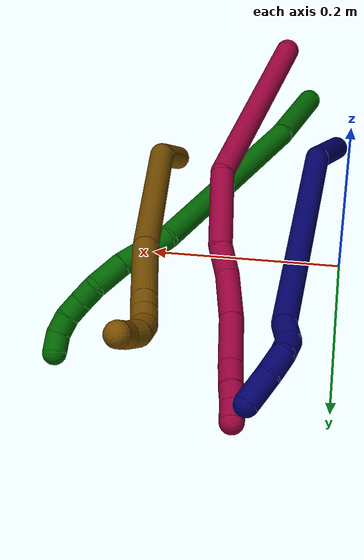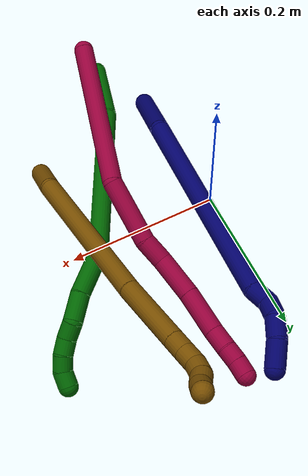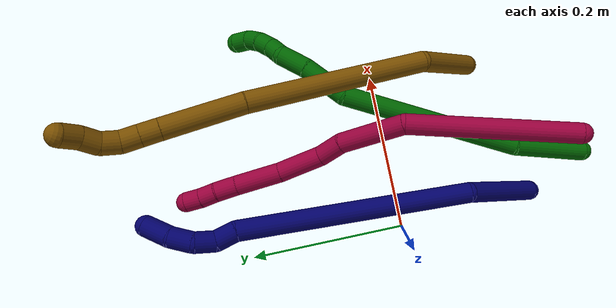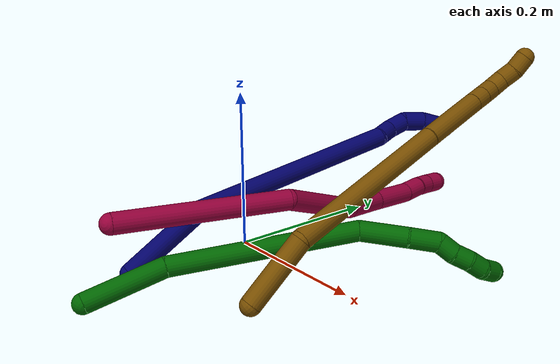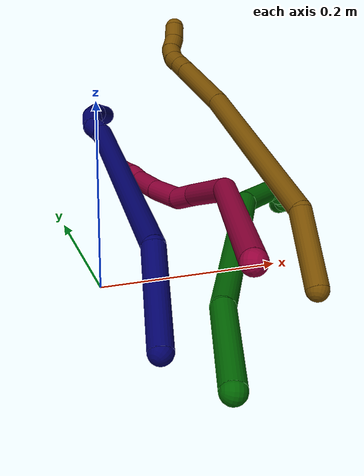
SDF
<sdf version="1.7">
 <world name="default">
  <model name="6">
   <static>0</static>
   <link name="6">
    <collision name="collision-cylinder-e_1_1_4">
     <pose>0.022154 0.043342 0.007342 -1.40299 0.466813 -0.396431</pose>
     <geometry><cylinder><radius>0.0125</radius><length>0.098453</length></cylinder></geometry>
     <surface>
      <friction><ode><mu>1.16</mu><mu2>1.16</mu2><slip1>0</slip1><slip2>0</slip2></ode></friction>
      <contact><ode><kp>1e+06</kp><kd>1</kd><max_vel>0</max_vel><min_depth>0.001</min_depth></ode></contact>
     </surface>
    </collision>
    <visual name="visual-cylinder-e_1_1_4">
     <pose>0.022154 0.043342 0.007342 -1.40299 0.466813 -0.396431</pose>
     <geometry><cylinder><radius>0.0125</radius><length>0.098453</length></cylinder></geometry>
     <material><ambient>0 0.392157 0.003922 1</ambient></material>
    </visual>
    <collision name="collision-cylinder-e_2_4_5">
     <pose>0.101424 0.17393 0.057335 -1.1161 0.531654 -0.336706</pose>
     <geometry><cylinder><radius>0.0125</radius><length>0.225327</length></cylinder></geometry>
     <surface>
      <friction><ode><mu>1.16</mu><mu2>1.16</mu2><slip1>0</slip1><slip2>0</slip2></ode></friction>
      <contact><ode><kp>1e+06</kp><kd>1</kd><max_vel>0</max_vel><min_depth>0.001</min_depth></ode></contact>
     </surface>
    </collision>
    <visual name="visual-cylinder-e_2_4_5">
     <pose>0.101424 0.17393 0.057335 -1.1161 0.531654 -0.336706</pose>
     <geometry><cylinder><radius>0.0125</radius><length>0.225327</length></cylinder></geometry>
     <material><ambient>0 0.392157 0.003922 1</ambient></material>
    </visual>
    <collision name="collision-cylinder-e_3_5_6">
     <pose>0.171774 0.276836 0.120513 -0.651729 0.473653 -0.162753</pose>
     <geometry><cylinder><radius>0.0125</radius><length>0.058025</length></cylinder></geometry>
     <surface>
      <friction><ode><mu>1.16</mu><mu2>1.16</mu2><slip1>0</slip1><slip2>0</slip2></ode></friction>
      <contact><ode><kp>1e+06</kp><kd>1</kd><max_vel>0</max_vel><min_depth>0.001</min_depth></ode></contact>
     </surface>
    </collision>
    <visual name="visual-cylinder-e_3_5_6">
     <pose>0.171774 0.276836 0.120513 -0.651729 0.473653 -0.162753</pose>
     <geometry><cylinder><radius>0.0125</radius><length>0.058025</length></cylinder></geometry>
     <material><ambient>0 0.392157 0.003922 1</ambient></material>
    </visual>
    <collision name="collision-cylinder-e_4_6_7">
     <pose>0.195559 0.302132 0.152065 -0.718262 0.624402 -0.241157</pose>
     <geometry><cylinder><radius>0.0125</radius><length>0.036097</length></cylinder></geometry>
     <surface>
      <friction><ode><mu>1.16</mu><mu2>1.16</mu2><slip1>0</slip1><slip2>0</slip2></ode></friction>
      <contact><ode><kp>1e+06</kp><kd>1</kd><max_vel>0</max_vel><min_depth>0.001</min_depth></ode></contact>
     </surface>
    </collision>
    <visual name="visual-cylinder-e_4_6_7">
     <pose>0.195559 0.302132 0.152065 -0.718262 0.624402 -0.241157</pose>
     <geometry><cylinder><radius>0.0125</radius><length>0.036097</length></cylinder></geometry>
     <material><ambient>0 0.392157 0.003922 1</ambient></material>
    </visual>
    <collision name="collision-cylinder-e_5_7_8">
     <pose>0.21357 0.312353 0.170857 -0.075052 0.763878 -0.030157</pose>
     <geometry><cylinder><radius>0.0125</radius><length>0.02157</length></cylinder></geometry>
     <surface>
      <friction><ode><mu>1.16</mu><mu2>1.16</mu2><slip1>0</slip1><slip2>0</slip2></ode></friction>
      <contact><ode><kp>1e+06</kp><kd>1</kd><max_vel>0</max_vel><min_depth>0.001</min_depth></ode></contact>
     </surface>
    </collision>
    <visual name="visual-cylinder-e_5_7_8">
     <pose>0.21357 0.312353 0.170857 -0.075052 0.763878 -0.030157</pose>
     <geometry><cylinder><radius>0.0125</radius><length>0.02157</length></cylinder></geometry>
     <material><ambient>0 0.392157 0.003922 1</ambient></material>
    </visual>
    <collision name="collision-cylinder-e_6_8_9">
     <pose>0.228345 0.315785 0.185008 -0.419616 0.807975 -0.181565</pose>
     <geometry><cylinder><radius>0.0125</radius><length>0.020238</length></cylinder></geometry>
     <surface>
      <friction><ode><mu>1.16</mu><mu2>1.16</mu2><slip1>0</slip1><slip2>0</slip2></ode></friction>
      <contact><ode><kp>1e+06</kp><kd>1</kd><max_vel>0</max_vel><min_depth>0.001</min_depth></ode></contact>
     </surface>
    </collision>
    <visual name="visual-cylinder-e_6_8_9">
     <pose>0.228345 0.315785 0.185008 -0.419616 0.807975 -0.181565</pose>
     <geometry><cylinder><radius>0.0125</radius><length>0.020238</length></cylinder></geometry>
     <material><ambient>0 0.392157 0.003922 1</ambient></material>
    </visual>
    <collision name="collision-cylinder-e_7_9_10">
     <pose>0.244422 0.320245 0.196162 -0.325936 1.04931 -0.189756</pose>
     <geometry><cylinder><radius>0.0125</radius><length>0.020209</length></cylinder></geometry>
     <surface>
      <friction><ode><mu>1.16</mu><mu2>1.16</mu2><slip1>0</slip1><slip2>0</slip2></ode></friction>
      <contact><ode><kp>1e+06</kp><kd>1</kd><max_vel>0</max_vel><min_depth>0.001</min_depth></ode></contact>
     </surface>
    </collision>
    <visual name="visual-cylinder-e_7_9_10">
     <pose>0.244422 0.320245 0.196162 -0.325936 1.04931 -0.189756</pose>
     <geometry><cylinder><radius>0.0125</radius><length>0.020209</length></cylinder></geometry>
     <material><ambient>0 0.392157 0.003922 1</ambient></material>
    </visual>
    <collision name="collision-cylinder-e_8_10_2">
     <pose>0.26251 0.325445 0.201904 -1.30611 1.19151 -0.956885</pose>
     <geometry><cylinder><radius>0.0125</radius><length>0.020081</length></cylinder></geometry>
     <surface>
      <friction><ode><mu>1.16</mu><mu2>1.16</mu2><slip1>0</slip1><slip2>0</slip2></ode></friction>
      <contact><ode><kp>1e+06</kp><kd>1</kd><max_vel>0</max_vel><min_depth>0.001</min_depth></ode></contact>
     </surface>
    </collision>
    <visual name="visual-cylinder-e_8_10_2">
     <pose>0.26251 0.325445 0.201904 -1.30611 1.19151 -0.956885</pose>
     <geometry><cylinder><radius>0.0125</radius><length>0.020081</length></cylinder></geometry>
     <material><ambient>0 0.392157 0.003922 1</ambient></material>
    </visual>
    <collision name="collision-sphere-2">
     <pose>0.271837 0.329033 0.202876 0 -0 0</pose>
     <geometry><sphere><radius>0.0125</radius></sphere></geometry>
     <surface>
      <friction><ode><mu>1.16</mu><mu2>1.16</mu2><slip1>0</slip1><slip2>0</slip2></ode></friction>
      <contact><ode><kp>1e+06</kp><kd>1</kd><max_vel>0</max_vel><min_depth>0.001</min_depth></ode></contact>
     </surface>
    </collision>
    <visual name="visual-sphere-2">
     <pose>0.271837 0.329033 0.202876 0 -0 0</pose>
     <geometry><sphere><radius>0.0125</radius></sphere></geometry>
     <material><ambient>0 0.392157 0.003922 1</ambient></material>
    </visual>
    <collision name="collision-sphere-10">
     <pose>0.253184 0.321857 0.200931 0 -0 0</pose>
     <geometry><sphere><radius>0.0125</radius></sphere></geometry>
     <surface>
      <friction><ode><mu>1.16</mu><mu2>1.16</mu2><slip1>0</slip1><slip2>0</slip2></ode></friction>
      <contact><ode><kp>1e+06</kp><kd>1</kd><max_vel>0</max_vel><min_depth>0.001</min_depth></ode></contact>
     </surface>
    </collision>
    <visual name="visual-sphere-10">
     <pose>0.253184 0.321857 0.200931 0 -0 0</pose>
     <geometry><sphere><radius>0.0125</radius></sphere></geometry>
     <material><ambient>0 0.392157 0.003922 1</ambient></material>
    </visual>
    <collision name="collision-sphere-9">
     <pose>0.23566 0.318634 0.191394 0 -0 0</pose>
     <geometry><sphere><radius>0.0125</radius></sphere></geometry>
     <surface>
      <friction><ode><mu>1.16</mu><mu2>1.16</mu2><slip1>0</slip1><slip2>0</slip2></ode></friction>
      <contact><ode><kp>1e+06</kp><kd>1</kd><max_vel>0</max_vel><min_depth>0.001</min_depth></ode></contact>
     </surface>
    </collision>
    <visual name="visual-sphere-9">
     <pose>0.23566 0.318634 0.191394 0 -0 0</pose>
     <geometry><sphere><radius>0.0125</radius></sphere></geometry>
     <material><ambient>0 0.392157 0.003922 1</ambient></material>
    </visual>
    <collision name="collision-sphere-4">
     <pose>0.044308 0.086684 0.014685 0 -0 0</pose>
     <geometry><sphere><radius>0.0125</radius></sphere></geometry>
     <surface>
      <friction><ode><mu>1.16</mu><mu2>1.16</mu2><slip1>0</slip1><slip2>0</slip2></ode></friction>
      <contact><ode><kp>1e+06</kp><kd>1</kd><max_vel>0</max_vel><min_depth>0.001</min_depth></ode></contact>
     </surface>
    </collision>
    <visual name="visual-sphere-4">
     <pose>0.044308 0.086684 0.014685 0 -0 0</pose>
     <geometry><sphere><radius>0.0125</radius></sphere></geometry>
     <material><ambient>0 0.392157 0.003922 1</ambient></material>
    </visual>
    <collision name="collision-sphere-1">
     <geometry><sphere><radius>0.0125</radius></sphere></geometry>
     <surface>
      <friction><ode><mu>1.16</mu><mu2>1.16</mu2><slip1>0</slip1><slip2>0</slip2></ode></friction>
      <contact><ode><kp>1e+06</kp><kd>1</kd><max_vel>0</max_vel><min_depth>0.001</min_depth></ode></contact>
     </surface>
    </collision>
    <visual name="visual-sphere-1">
     <geometry><sphere><radius>0.0125</radius></sphere></geometry>
     <material><ambient>0 0.392157 0.003922 1</ambient></material>
    </visual>
    <collision name="collision-sphere-8">
     <pose>0.221031 0.312937 0.178623 0 -0 0</pose>
     <geometry><sphere><radius>0.0125</radius></sphere></geometry>
     <surface>
      <friction><ode><mu>1.16</mu><mu2>1.16</mu2><slip1>0</slip1><slip2>0</slip2></ode></friction>
      <contact><ode><kp>1e+06</kp><kd>1</kd><max_vel>0</max_vel><min_depth>0.001</min_depth></ode></contact>
     </surface>
    </collision>
    <visual name="visual-sphere-8">
     <pose>0.221031 0.312937 0.178623 0 -0 0</pose>
     <geometry><sphere><radius>0.0125</radius></sphere></geometry>
     <material><ambient>0 0.392157 0.003922 1</ambient></material>
    </visual>
    <collision name="collision-sphere-5">
     <pose>0.15854 0.261175 0.099986 0 -0 0</pose>
     <geometry><sphere><radius>0.0125</radius></sphere></geometry>
     <surface>
      <friction><ode><mu>1.16</mu><mu2>1.16</mu2><slip1>0</slip1><slip2>0</slip2></ode></friction>
      <contact><ode><kp>1e+06</kp><kd>1</kd><max_vel>0</max_vel><min_depth>0.001</min_depth></ode></contact>
     </surface>
    </collision>
    <visual name="visual-sphere-5">
     <pose>0.15854 0.261175 0.099986 0 -0 0</pose>
     <geometry><sphere><radius>0.0125</radius></sphere></geometry>
     <material><ambient>0 0.392157 0.003922 1</ambient></material>
    </visual>
    <collision name="collision-sphere-6">
     <pose>0.185007 0.292496 0.141039 0 -0 0</pose>
     <geometry><sphere><radius>0.0125</radius></sphere></geometry>
     <surface>
      <friction><ode><mu>1.16</mu><mu2>1.16</mu2><slip1>0</slip1><slip2>0</slip2></ode></friction>
      <contact><ode><kp>1e+06</kp><kd>1</kd><max_vel>0</max_vel><min_depth>0.001</min_depth></ode></contact>
     </surface>
    </collision>
    <visual name="visual-sphere-6">
     <pose>0.185007 0.292496 0.141039 0 -0 0</pose>
     <geometry><sphere><radius>0.0125</radius></sphere></geometry>
     <material><ambient>0 0.392157 0.003922 1</ambient></material>
    </visual>
    <collision name="collision-sphere-7">
     <pose>0.20611 0.311769 0.16309 0 -0 0</pose>
     <geometry><sphere><radius>0.0125</radius></sphere></geometry>
     <surface>
      <friction><ode><mu>1.16</mu><mu2>1.16</mu2><slip1>0</slip1><slip2>0</slip2></ode></friction>
      <contact><ode><kp>1e+06</kp><kd>1</kd><max_vel>0</max_vel><min_depth>0.001</min_depth></ode></contact>
     </surface>
    </collision>
    <visual name="visual-sphere-7">
     <pose>0.20611 0.311769 0.16309 0 -0 0</pose>
     <geometry><sphere><radius>0.0125</radius></sphere></geometry>
     <material><ambient>0 0.392157 0.003922 1</ambient></material>
    </visual>
    <inertial>
     <pose>0.123 0.193126 0.083144 0 -0 0</pose>
     <mass>0.5</mass>
     <inertia>
      <ixx>0.000589</ixx>
      <ixy>0</ixy>
      <ixz>0</ixz>
      <iyy>0.000315</iyy>
      <iyz>0</iyz>
      <izz>-0.001359</izz>
     </inertia>
    </inertial>
   </link>
   <pose>0.047397 -0.250883 0.011487 1.87492 0.749874 1.7197</pose>
  </model>
  <model name="7">
   <static>0</static>
   <link name="7">
    <collision name="collision-cylinder-e_1_1_4">
     <pose>-0.009105 0.028794 0.045454 -0.564681 -0.167621 0.04873</pose>
     <geometry><cylinder><radius>0.0125</radius><length>0.109143</length></cylinder></geometry>
     <surface>
      <friction><ode><mu>1.16</mu><mu2>1.16</mu2><slip1>0</slip1><slip2>0</slip2></ode></friction>
      <contact><ode><kp>1e+06</kp><kd>1</kd><max_vel>0</max_vel><min_depth>0.001</min_depth></ode></contact>
     </surface>
    </collision>
    <visual name="visual-cylinder-e_1_1_4">
     <pose>-0.009105 0.028794 0.045454 -0.564681 -0.167621 0.04873</pose>
     <geometry><cylinder><radius>0.0125</radius><length>0.109143</length></cylinder></geometry>
     <material><ambient>0.003922 0 0.403922 1</ambient></material>
    </visual>
    <collision name="collision-cylinder-e_2_4_5">
     <pose>0.023568 0.144888 0.191972 -0.712448 0.303177 -0.113562</pose>
     <geometry><cylinder><radius>0.0125</radius><length>0.279861</length></cylinder></geometry>
     <surface>
      <friction><ode><mu>1.16</mu><mu2>1.16</mu2><slip1>0</slip1><slip2>0</slip2></ode></friction>
      <contact><ode><kp>1e+06</kp><kd>1</kd><max_vel>0</max_vel><min_depth>0.001</min_depth></ode></contact>
     </surface>
    </collision>
    <visual name="visual-cylinder-e_2_4_5">
     <pose>0.023568 0.144888 0.191972 -0.712448 0.303177 -0.113562</pose>
     <geometry><cylinder><radius>0.0125</radius><length>0.279861</length></cylinder></geometry>
     <material><ambient>0.003922 0 0.403922 1</ambient></material>
    </visual>
    <collision name="collision-cylinder-e_3_5_6">
     <pose>0.068485 0.242716 0.299424 -1.0255 0.249699 -0.141075</pose>
     <geometry><cylinder><radius>0.0125</radius><length>0.025417</length></cylinder></geometry>
     <surface>
      <friction><ode><mu>1.16</mu><mu2>1.16</mu2><slip1>0</slip1><slip2>0</slip2></ode></friction>
      <contact><ode><kp>1e+06</kp><kd>1</kd><max_vel>0</max_vel><min_depth>0.001</min_depth></ode></contact>
     </surface>
    </collision>
    <visual name="visual-cylinder-e_3_5_6">
     <pose>0.068485 0.242716 0.299424 -1.0255 0.249699 -0.141075</pose>
     <geometry><cylinder><radius>0.0125</radius><length>0.025417</length></cylinder></geometry>
     <material><ambient>0.003922 0 0.403922 1</ambient></material>
    </visual>
    <collision name="collision-cylinder-e_4_6_7">
     <pose>0.073146 0.259874 0.315854 -0.583465 0.125717 -0.037798</pose>
     <geometry><cylinder><radius>0.0125</radius><length>0.024259</length></cylinder></geometry>
     <surface>
      <friction><ode><mu>1.16</mu><mu2>1.16</mu2><slip1>0</slip1><slip2>0</slip2></ode></friction>
      <contact><ode><kp>1e+06</kp><kd>1</kd><max_vel>0</max_vel><min_depth>0.001</min_depth></ode></contact>
     </surface>
    </collision>
    <visual name="visual-cylinder-e_4_6_7">
     <pose>0.073146 0.259874 0.315854 -0.583465 0.125717 -0.037798</pose>
     <geometry><cylinder><radius>0.0125</radius><length>0.024259</length></cylinder></geometry>
     <material><ambient>0.003922 0 0.403922 1</ambient></material>
    </visual>
    <collision name="collision-cylinder-e_5_7_8">
     <pose>0.081141 0.270039 0.337451 -0.296939 0.491889 -0.075057</pose>
     <geometry><cylinder><radius>0.0125</radius><length>0.027417</length></cylinder></geometry>
     <surface>
      <friction><ode><mu>1.16</mu><mu2>1.16</mu2><slip1>0</slip1><slip2>0</slip2></ode></friction>
      <contact><ode><kp>1e+06</kp><kd>1</kd><max_vel>0</max_vel><min_depth>0.001</min_depth></ode></contact>
     </surface>
    </collision>
    <visual name="visual-cylinder-e_5_7_8">
     <pose>0.081141 0.270039 0.337451 -0.296939 0.491889 -0.075057</pose>
     <geometry><cylinder><radius>0.0125</radius><length>0.027417</length></cylinder></geometry>
     <material><ambient>0.003922 0 0.403922 1</ambient></material>
    </visual>
    <collision name="collision-cylinder-e_6_8_2">
     <pose>0.098477 0.274666 0.361975 -0.083972 0.69543 -0.03045</pose>
     <geometry><cylinder><radius>0.0125</radius><length>0.033903</length></cylinder></geometry>
     <surface>
      <friction><ode><mu>1.16</mu><mu2>1.16</mu2><slip1>0</slip1><slip2>0</slip2></ode></friction>
      <contact><ode><kp>1e+06</kp><kd>1</kd><max_vel>0</max_vel><min_depth>0.001</min_depth></ode></contact>
     </surface>
    </collision>
    <visual name="visual-cylinder-e_6_8_2">
     <pose>0.098477 0.274666 0.361975 -0.083972 0.69543 -0.03045</pose>
     <geometry><cylinder><radius>0.0125</radius><length>0.033903</length></cylinder></geometry>
     <material><ambient>0.003922 0 0.403922 1</ambient></material>
    </visual>
    <collision name="collision-sphere-2">
     <pose>0.109338 0.275758 0.374944 0 -0 0</pose>
     <geometry><sphere><radius>0.0125</radius></sphere></geometry>
     <surface>
      <friction><ode><mu>1.16</mu><mu2>1.16</mu2><slip1>0</slip1><slip2>0</slip2></ode></friction>
      <contact><ode><kp>1e+06</kp><kd>1</kd><max_vel>0</max_vel><min_depth>0.001</min_depth></ode></contact>
     </surface>
    </collision>
    <visual name="visual-sphere-2">
     <pose>0.109338 0.275758 0.374944 0 -0 0</pose>
     <geometry><sphere><radius>0.0125</radius></sphere></geometry>
     <material><ambient>0.003922 0 0.403922 1</ambient></material>
    </visual>
    <collision name="collision-sphere-4">
     <pose>-0.018209 0.057589 0.090907 0 -0 0</pose>
     <geometry><sphere><radius>0.0125</radius></sphere></geometry>
     <surface>
      <friction><ode><mu>1.16</mu><mu2>1.16</mu2><slip1>0</slip1><slip2>0</slip2></ode></friction>
      <contact><ode><kp>1e+06</kp><kd>1</kd><max_vel>0</max_vel><min_depth>0.001</min_depth></ode></contact>
     </surface>
    </collision>
    <visual name="visual-sphere-4">
     <pose>-0.018209 0.057589 0.090907 0 -0 0</pose>
     <geometry><sphere><radius>0.0125</radius></sphere></geometry>
     <material><ambient>0.003922 0 0.403922 1</ambient></material>
    </visual>
    <collision name="collision-sphere-1">
     <geometry><sphere><radius>0.0125</radius></sphere></geometry>
     <surface>
      <friction><ode><mu>1.16</mu><mu2>1.16</mu2><slip1>0</slip1><slip2>0</slip2></ode></friction>
      <contact><ode><kp>1e+06</kp><kd>1</kd><max_vel>0</max_vel><min_depth>0.001</min_depth></ode></contact>
     </surface>
    </collision>
    <visual name="visual-sphere-1">
     <geometry><sphere><radius>0.0125</radius></sphere></geometry>
     <material><ambient>0.003922 0 0.403922 1</ambient></material>
    </visual>
    <collision name="collision-sphere-8">
     <pose>0.087616 0.273575 0.349006 0 -0 0</pose>
     <geometry><sphere><radius>0.0125</radius></sphere></geometry>
     <surface>
      <friction><ode><mu>1.16</mu><mu2>1.16</mu2><slip1>0</slip1><slip2>0</slip2></ode></friction>
      <contact><ode><kp>1e+06</kp><kd>1</kd><max_vel>0</max_vel><min_depth>0.001</min_depth></ode></contact>
     </surface>
    </collision>
    <visual name="visual-sphere-8">
     <pose>0.087616 0.273575 0.349006 0 -0 0</pose>
     <geometry><sphere><radius>0.0125</radius></sphere></geometry>
     <material><ambient>0.003922 0 0.403922 1</ambient></material>
    </visual>
    <collision name="collision-sphere-5">
     <pose>0.065344 0.232187 0.293037 0 -0 0</pose>
     <geometry><sphere><radius>0.0125</radius></sphere></geometry>
     <surface>
      <friction><ode><mu>1.16</mu><mu2>1.16</mu2><slip1>0</slip1><slip2>0</slip2></ode></friction>
      <contact><ode><kp>1e+06</kp><kd>1</kd><max_vel>0</max_vel><min_depth>0.001</min_depth></ode></contact>
     </surface>
    </collision>
    <visual name="visual-sphere-5">
     <pose>0.065344 0.232187 0.293037 0 -0 0</pose>
     <geometry><sphere><radius>0.0125</radius></sphere></geometry>
     <material><ambient>0.003922 0 0.403922 1</ambient></material>
    </visual>
    <collision name="collision-sphere-6">
     <pose>0.071625 0.253244 0.305811 0 -0 0</pose>
     <geometry><sphere><radius>0.0125</radius></sphere></geometry>
     <surface>
      <friction><ode><mu>1.16</mu><mu2>1.16</mu2><slip1>0</slip1><slip2>0</slip2></ode></friction>
      <contact><ode><kp>1e+06</kp><kd>1</kd><max_vel>0</max_vel><min_depth>0.001</min_depth></ode></contact>
     </surface>
    </collision>
    <visual name="visual-sphere-6">
     <pose>0.071625 0.253244 0.305811 0 -0 0</pose>
     <geometry><sphere><radius>0.0125</radius></sphere></geometry>
     <material><ambient>0.003922 0 0.403922 1</ambient></material>
    </visual>
    <collision name="collision-sphere-7">
     <pose>0.074667 0.266504 0.325897 0 -0 0</pose>
     <geometry><sphere><radius>0.0125</radius></sphere></geometry>
     <surface>
      <friction><ode><mu>1.16</mu><mu2>1.16</mu2><slip1>0</slip1><slip2>0</slip2></ode></friction>
      <contact><ode><kp>1e+06</kp><kd>1</kd><max_vel>0</max_vel><min_depth>0.001</min_depth></ode></contact>
     </surface>
    </collision>
    <visual name="visual-sphere-7">
     <pose>0.074667 0.266504 0.325897 0 -0 0</pose>
     <geometry><sphere><radius>0.0125</radius></sphere></geometry>
     <material><ambient>0.003922 0 0.403922 1</ambient></material>
    </visual>
    <inertial>
     <pose>0.029361 0.145761 0.190966 0 -0 0</pose>
     <mass>0.5</mass>
     <inertia>
      <ixx>0.001678</ixx>
      <ixy>0</ixy>
      <ixz>0</ixz>
      <iyy>0.001356</iyy>
      <iyz>0</iyz>
      <izz>-0.001716</izz>
     </inertia>
    </inertial>
   </link>
   <pose>0.011641 -0.172521 0.011502 0.658992 1.11196 1.45337</pose>
  </model>
  <model name="8">
   <static>0</static>
   <link name="8">
    <collision name="collision-cylinder-e_1_1_4">
     <pose>0.013568 0.072674 -0.07148 -2.34791 0.132327 -0.313625</pose>
     <geometry><cylinder><radius>0.0125</radius><length>0.205669</length></cylinder></geometry>
     <surface>
      <friction><ode><mu>1.16</mu><mu2>1.16</mu2><slip1>0</slip1><slip2>0</slip2></ode></friction>
      <contact><ode><kp>1e+06</kp><kd>1</kd><max_vel>0</max_vel><min_depth>0.001</min_depth></ode></contact>
     </surface>
    </collision>
    <visual name="visual-cylinder-e_1_1_4">
     <pose>0.013568 0.072674 -0.07148 -2.34791 0.132327 -0.313625</pose>
     <geometry><cylinder><radius>0.0125</radius><length>0.205669</length></cylinder></geometry>
     <material><ambient>0.584314 0 0.227451 1</ambient></material>
    </visual>
    <collision name="collision-cylinder-e_2_4_5">
     <pose>0.035978 0.158201 -0.181522 -2.81986 0.214185 -1.17024</pose>
     <geometry><cylinder><radius>0.0125</radius><length>0.083198</length></cylinder></geometry>
     <surface>
      <friction><ode><mu>1.16</mu><mu2>1.16</mu2><slip1>0</slip1><slip2>0</slip2></ode></friction>
      <contact><ode><kp>1e+06</kp><kd>1</kd><max_vel>0</max_vel><min_depth>0.001</min_depth></ode></contact>
     </surface>
    </collision>
    <visual name="visual-cylinder-e_2_4_5">
     <pose>0.035978 0.158201 -0.181522 -2.81986 0.214185 -1.17024</pose>
     <geometry><cylinder><radius>0.0125</radius><length>0.083198</length></cylinder></geometry>
     <material><ambient>0.584314 0 0.227451 1</ambient></material>
    </visual>
    <collision name="collision-cylinder-e_3_5_6">
     <pose>0.046473 0.172625 -0.236116 -3.04395 0.102229 -1.61681</pose>
     <geometry><cylinder><radius>0.0125</radius><length>0.032385</length></cylinder></geometry>
     <surface>
      <friction><ode><mu>1.16</mu><mu2>1.16</mu2><slip1>0</slip1><slip2>0</slip2></ode></friction>
      <contact><ode><kp>1e+06</kp><kd>1</kd><max_vel>0</max_vel><min_depth>0.001</min_depth></ode></contact>
     </surface>
    </collision>
    <visual name="visual-cylinder-e_3_5_6">
     <pose>0.046473 0.172625 -0.236116 -3.04395 0.102229 -1.61681</pose>
     <geometry><cylinder><radius>0.0125</radius><length>0.032385</length></cylinder></geometry>
     <material><ambient>0.584314 0 0.227451 1</ambient></material>
    </visual>
    <collision name="collision-cylinder-e_4_6_7">
     <pose>0.046627 0.184626 -0.277398 -2.74984 -0.054784 0.274438</pose>
     <geometry><cylinder><radius>0.0125</radius><length>0.054722</length></cylinder></geometry>
     <surface>
      <friction><ode><mu>1.16</mu><mu2>1.16</mu2><slip1>0</slip1><slip2>0</slip2></ode></friction>
      <contact><ode><kp>1e+06</kp><kd>1</kd><max_vel>0</max_vel><min_depth>0.001</min_depth></ode></contact>
     </surface>
    </collision>
    <visual name="visual-cylinder-e_4_6_7">
     <pose>0.046627 0.184626 -0.277398 -2.74984 -0.054784 0.274438</pose>
     <geometry><cylinder><radius>0.0125</radius><length>0.054722</length></cylinder></geometry>
     <material><ambient>0.584314 0 0.227451 1</ambient></material>
    </visual>
    <collision name="collision-cylinder-e_5_7_8">
     <pose>0.044375 0.208286 -0.327881 -2.65869 -0.026435 0.107254</pose>
     <geometry><cylinder><radius>0.0125</radius><length>0.057001</length></cylinder></geometry>
     <surface>
      <friction><ode><mu>1.16</mu><mu2>1.16</mu2><slip1>0</slip1><slip2>0</slip2></ode></friction>
      <contact><ode><kp>1e+06</kp><kd>1</kd><max_vel>0</max_vel><min_depth>0.001</min_depth></ode></contact>
     </surface>
    </collision>
    <visual name="visual-cylinder-e_5_7_8">
     <pose>0.044375 0.208286 -0.327881 -2.65869 -0.026435 0.107254</pose>
     <geometry><cylinder><radius>0.0125</radius><length>0.057001</length></cylinder></geometry>
     <material><ambient>0.584314 0 0.227451 1</ambient></material>
    </visual>
    <collision name="collision-cylinder-e_6_8_9">
     <pose>0.041642 0.228316 -0.364613 -2.60753 -0.147127 0.526297</pose>
     <geometry><cylinder><radius>0.0125</radius><length>0.027011</length></cylinder></geometry>
     <surface>
      <friction><ode><mu>1.16</mu><mu2>1.16</mu2><slip1>0</slip1><slip2>0</slip2></ode></friction>
      <contact><ode><kp>1e+06</kp><kd>1</kd><max_vel>0</max_vel><min_depth>0.001</min_depth></ode></contact>
     </surface>
    </collision>
    <visual name="visual-cylinder-e_6_8_9">
     <pose>0.041642 0.228316 -0.364613 -2.60753 -0.147127 0.526297</pose>
     <geometry><cylinder><radius>0.0125</radius><length>0.027011</length></cylinder></geometry>
     <material><ambient>0.584314 0 0.227451 1</ambient></material>
    </visual>
    <collision name="collision-cylinder-e_7_9_10">
     <pose>0.039031 0.239086 -0.385276 -2.73289 -0.063155 0.302512</pose>
     <geometry><cylinder><radius>0.0125</radius><length>0.020014</length></cylinder></geometry>
     <surface>
      <friction><ode><mu>1.16</mu><mu2>1.16</mu2><slip1>0</slip1><slip2>0</slip2></ode></friction>
      <contact><ode><kp>1e+06</kp><kd>1</kd><max_vel>0</max_vel><min_depth>0.001</min_depth></ode></contact>
     </surface>
    </collision>
    <visual name="visual-cylinder-e_7_9_10">
     <pose>0.039031 0.239086 -0.385276 -2.73289 -0.063155 0.302512</pose>
     <geometry><cylinder><radius>0.0125</radius><length>0.020014</length></cylinder></geometry>
     <material><ambient>0.584314 0 0.227451 1</ambient></material>
    </visual>
    <collision name="collision-cylinder-e_8_10_2">
     <pose>0.038317 0.247808 -0.403238 -2.64618 -0.008161 0.032266</pose>
     <geometry><cylinder><radius>0.0125</radius><length>0.02</length></cylinder></geometry>
     <surface>
      <friction><ode><mu>1.16</mu><mu2>1.16</mu2><slip1>0</slip1><slip2>0</slip2></ode></friction>
      <contact><ode><kp>1e+06</kp><kd>1</kd><max_vel>0</max_vel><min_depth>0.001</min_depth></ode></contact>
     </surface>
    </collision>
    <visual name="visual-cylinder-e_8_10_2">
     <pose>0.038317 0.247808 -0.403238 -2.64618 -0.008161 0.032266</pose>
     <geometry><cylinder><radius>0.0125</radius><length>0.02</length></cylinder></geometry>
     <material><ambient>0.584314 0 0.227451 1</ambient></material>
    </visual>
    <collision name="collision-sphere-2">
     <pose>0.038236 0.252562 -0.412036 0 -0 0</pose>
     <geometry><sphere><radius>0.0125</radius></sphere></geometry>
     <surface>
      <friction><ode><mu>1.16</mu><mu2>1.16</mu2><slip1>0</slip1><slip2>0</slip2></ode></friction>
      <contact><ode><kp>1e+06</kp><kd>1</kd><max_vel>0</max_vel><min_depth>0.001</min_depth></ode></contact>
     </surface>
    </collision>
    <visual name="visual-sphere-2">
     <pose>0.038236 0.252562 -0.412036 0 -0 0</pose>
     <geometry><sphere><radius>0.0125</radius></sphere></geometry>
     <material><ambient>0.584314 0 0.227451 1</ambient></material>
    </visual>
    <collision name="collision-sphere-10">
     <pose>0.038399 0.243055 -0.394441 0 -0 0</pose>
     <geometry><sphere><radius>0.0125</radius></sphere></geometry>
     <surface>
      <friction><ode><mu>1.16</mu><mu2>1.16</mu2><slip1>0</slip1><slip2>0</slip2></ode></friction>
      <contact><ode><kp>1e+06</kp><kd>1</kd><max_vel>0</max_vel><min_depth>0.001</min_depth></ode></contact>
     </surface>
    </collision>
    <visual name="visual-sphere-10">
     <pose>0.038399 0.243055 -0.394441 0 -0 0</pose>
     <geometry><sphere><radius>0.0125</radius></sphere></geometry>
     <material><ambient>0.584314 0 0.227451 1</ambient></material>
    </visual>
    <collision name="collision-sphere-9">
     <pose>0.039662 0.235117 -0.376112 0 -0 0</pose>
     <geometry><sphere><radius>0.0125</radius></sphere></geometry>
     <surface>
      <friction><ode><mu>1.16</mu><mu2>1.16</mu2><slip1>0</slip1><slip2>0</slip2></ode></friction>
      <contact><ode><kp>1e+06</kp><kd>1</kd><max_vel>0</max_vel><min_depth>0.001</min_depth></ode></contact>
     </surface>
    </collision>
    <visual name="visual-sphere-9">
     <pose>0.039662 0.235117 -0.376112 0 -0 0</pose>
     <geometry><sphere><radius>0.0125</radius></sphere></geometry>
     <material><ambient>0.584314 0 0.227451 1</ambient></material>
    </visual>
    <collision name="collision-sphere-4">
     <pose>0.027136 0.145348 -0.142959 0 -0 0</pose>
     <geometry><sphere><radius>0.0125</radius></sphere></geometry>
     <surface>
      <friction><ode><mu>1.16</mu><mu2>1.16</mu2><slip1>0</slip1><slip2>0</slip2></ode></friction>
      <contact><ode><kp>1e+06</kp><kd>1</kd><max_vel>0</max_vel><min_depth>0.001</min_depth></ode></contact>
     </surface>
    </collision>
    <visual name="visual-sphere-4">
     <pose>0.027136 0.145348 -0.142959 0 -0 0</pose>
     <geometry><sphere><radius>0.0125</radius></sphere></geometry>
     <material><ambient>0.584314 0 0.227451 1</ambient></material>
    </visual>
    <collision name="collision-sphere-1">
     <geometry><sphere><radius>0.0125</radius></sphere></geometry>
     <surface>
      <friction><ode><mu>1.16</mu><mu2>1.16</mu2><slip1>0</slip1><slip2>0</slip2></ode></friction>
      <contact><ode><kp>1e+06</kp><kd>1</kd><max_vel>0</max_vel><min_depth>0.001</min_depth></ode></contact>
     </surface>
    </collision>
    <visual name="visual-sphere-1">
     <geometry><sphere><radius>0.0125</radius></sphere></geometry>
     <material><ambient>0.584314 0 0.227451 1</ambient></material>
    </visual>
    <collision name="collision-sphere-8">
     <pose>0.043622 0.221516 -0.353114 0 -0 0</pose>
     <geometry><sphere><radius>0.0125</radius></sphere></geometry>
     <surface>
      <friction><ode><mu>1.16</mu><mu2>1.16</mu2><slip1>0</slip1><slip2>0</slip2></ode></friction>
      <contact><ode><kp>1e+06</kp><kd>1</kd><max_vel>0</max_vel><min_depth>0.001</min_depth></ode></contact>
     </surface>
    </collision>
    <visual name="visual-sphere-8">
     <pose>0.043622 0.221516 -0.353114 0 -0 0</pose>
     <geometry><sphere><radius>0.0125</radius></sphere></geometry>
     <material><ambient>0.584314 0 0.227451 1</ambient></material>
    </visual>
    <collision name="collision-sphere-5">
     <pose>0.04482 0.171054 -0.220085 0 -0 0</pose>
     <geometry><sphere><radius>0.0125</radius></sphere></geometry>
     <surface>
      <friction><ode><mu>1.16</mu><mu2>1.16</mu2><slip1>0</slip1><slip2>0</slip2></ode></friction>
      <contact><ode><kp>1e+06</kp><kd>1</kd><max_vel>0</max_vel><min_depth>0.001</min_depth></ode></contact>
     </surface>
    </collision>
    <visual name="visual-sphere-5">
     <pose>0.04482 0.171054 -0.220085 0 -0 0</pose>
     <geometry><sphere><radius>0.0125</radius></sphere></geometry>
     <material><ambient>0.584314 0 0.227451 1</ambient></material>
    </visual>
    <collision name="collision-sphere-6">
     <pose>0.048125 0.174195 -0.252147 0 -0 0</pose>
     <geometry><sphere><radius>0.0125</radius></sphere></geometry>
     <surface>
      <friction><ode><mu>1.16</mu><mu2>1.16</mu2><slip1>0</slip1><slip2>0</slip2></ode></friction>
      <contact><ode><kp>1e+06</kp><kd>1</kd><max_vel>0</max_vel><min_depth>0.001</min_depth></ode></contact>
     </surface>
    </collision>
    <visual name="visual-sphere-6">
     <pose>0.048125 0.174195 -0.252147 0 -0 0</pose>
     <geometry><sphere><radius>0.0125</radius></sphere></geometry>
     <material><ambient>0.584314 0 0.227451 1</ambient></material>
    </visual>
    <collision name="collision-sphere-7">
     <pose>0.045129 0.195057 -0.302648 0 -0 0</pose>
     <geometry><sphere><radius>0.0125</radius></sphere></geometry>
     <surface>
      <friction><ode><mu>1.16</mu><mu2>1.16</mu2><slip1>0</slip1><slip2>0</slip2></ode></friction>
      <contact><ode><kp>1e+06</kp><kd>1</kd><max_vel>0</max_vel><min_depth>0.001</min_depth></ode></contact>
     </surface>
    </collision>
    <visual name="visual-sphere-7">
     <pose>0.045129 0.195057 -0.302648 0 -0 0</pose>
     <geometry><sphere><radius>0.0125</radius></sphere></geometry>
     <material><ambient>0.584314 0 0.227451 1</ambient></material>
    </visual>
    <inertial>
     <pose>0.030084 0.143166 -0.193887 0 -0 0</pose>
     <mass>0.5</mass>
     <inertia>
      <ixx>0.000485</ixx>
      <ixy>0</ixy>
      <ixz>0</ixz>
      <iyy>-0.000764</iyy>
      <iyz>0</iyz>
      <izz>-0.000689</izz>
     </inertia>
    </inertial>
   </link>
   <pose>0.074559 -0.223632 0.107585 0.928079 0.96142 -0.068468</pose>
  </model>
  <model name="12">
   <static>0</static>
   <link name="12">
    <collision name="collision-cylinder-e_1_1_4">
     <pose>-0.010695 0.008155 0.041613 -0.19351 -0.247058 0.024101</pose>
     <geometry><cylinder><radius>0.0125</radius><length>0.087465</length></cylinder></geometry>
     <surface>
      <friction><ode><mu>1.16</mu><mu2>1.16</mu2><slip1>0</slip1><slip2>0</slip2></ode></friction>
      <contact><ode><kp>1e+06</kp><kd>1</kd><max_vel>0</max_vel><min_depth>0.001</min_depth></ode></contact>
     </surface>
    </collision>
    <visual name="visual-cylinder-e_1_1_4">
     <pose>-0.010695 0.008155 0.041613 -0.19351 -0.247058 0.024101</pose>
     <geometry><cylinder><radius>0.0125</radius><length>0.087465</length></cylinder></geometry>
     <material><ambient>0.466667 0.301961 0 1</ambient></material>
    </visual>
    <collision name="collision-cylinder-e_2_4_5">
     <pose>-0.030593 0.081523 0.170612 -0.641111 -0.084209 0.027973</pose>
     <geometry><cylinder><radius>0.0125</radius><length>0.218851</length></cylinder></geometry>
     <surface>
      <friction><ode><mu>1.16</mu><mu2>1.16</mu2><slip1>0</slip1><slip2>0</slip2></ode></friction>
      <contact><ode><kp>1e+06</kp><kd>1</kd><max_vel>0</max_vel><min_depth>0.001</min_depth></ode></contact>
     </surface>
    </collision>
    <visual name="visual-cylinder-e_2_4_5">
     <pose>-0.030593 0.081523 0.170612 -0.641111 -0.084209 0.027973</pose>
     <geometry><cylinder><radius>0.0125</radius><length>0.218851</length></cylinder></geometry>
     <material><ambient>0.466667 0.301961 0 1</ambient></material>
    </visual>
    <collision name="collision-cylinder-e_3_5_6">
     <pose>-0.044139 0.177251 0.291992 -0.731504 -0.094753 0.036312</pose>
     <geometry><cylinder><radius>0.0125</radius><length>0.091771</length></cylinder></geometry>
     <surface>
      <friction><ode><mu>1.16</mu><mu2>1.16</mu2><slip1>0</slip1><slip2>0</slip2></ode></friction>
      <contact><ode><kp>1e+06</kp><kd>1</kd><max_vel>0</max_vel><min_depth>0.001</min_depth></ode></contact>
     </surface>
    </collision>
    <visual name="visual-cylinder-e_3_5_6">
     <pose>-0.044139 0.177251 0.291992 -0.731504 -0.094753 0.036312</pose>
     <geometry><cylinder><radius>0.0125</radius><length>0.091771</length></cylinder></geometry>
     <material><ambient>0.466667 0.301961 0 1</ambient></material>
    </visual>
    <collision name="collision-cylinder-e_4_6_7">
     <pose>-0.0494 0.214814 0.333583 -0.748017 -0.088601 0.034793</pose>
     <geometry><cylinder><radius>0.0125</radius><length>0.02081</length></cylinder></geometry>
     <surface>
      <friction><ode><mu>1.16</mu><mu2>1.16</mu2><slip1>0</slip1><slip2>0</slip2></ode></friction>
      <contact><ode><kp>1e+06</kp><kd>1</kd><max_vel>0</max_vel><min_depth>0.001</min_depth></ode></contact>
     </surface>
    </collision>
    <visual name="visual-cylinder-e_4_6_7">
     <pose>-0.0494 0.214814 0.333583 -0.748017 -0.088601 0.034793</pose>
     <geometry><cylinder><radius>0.0125</radius><length>0.02081</length></cylinder></geometry>
     <material><ambient>0.466667 0.301961 0 1</ambient></material>
    </visual>
    <collision name="collision-cylinder-e_5_7_8">
     <pose>-0.05129 0.228752 0.348576 -0.749939 -0.095532 0.037625</pose>
     <geometry><cylinder><radius>0.0125</radius><length>0.020306</length></cylinder></geometry>
     <surface>
      <friction><ode><mu>1.16</mu><mu2>1.16</mu2><slip1>0</slip1><slip2>0</slip2></ode></friction>
      <contact><ode><kp>1e+06</kp><kd>1</kd><max_vel>0</max_vel><min_depth>0.001</min_depth></ode></contact>
     </surface>
    </collision>
    <visual name="visual-cylinder-e_5_7_8">
     <pose>-0.05129 0.228752 0.348576 -0.749939 -0.095532 0.037625</pose>
     <geometry><cylinder><radius>0.0125</radius><length>0.020306</length></cylinder></geometry>
     <material><ambient>0.466667 0.301961 0 1</ambient></material>
    </visual>
    <collision name="collision-cylinder-e_6_8_9">
     <pose>-0.052958 0.239624 0.365136 -0.41001 -0.06989 0.014538</pose>
     <geometry><cylinder><radius>0.0125</radius><length>0.020034</length></cylinder></geometry>
     <surface>
      <friction><ode><mu>1.16</mu><mu2>1.16</mu2><slip1>0</slip1><slip2>0</slip2></ode></friction>
      <contact><ode><kp>1e+06</kp><kd>1</kd><max_vel>0</max_vel><min_depth>0.001</min_depth></ode></contact>
     </surface>
    </collision>
    <visual name="visual-cylinder-e_6_8_9">
     <pose>-0.052958 0.239624 0.365136 -0.41001 -0.06989 0.014538</pose>
     <geometry><cylinder><radius>0.0125</radius><length>0.020034</length></cylinder></geometry>
     <material><ambient>0.466667 0.301961 0 1</ambient></material>
    </visual>
    <collision name="collision-cylinder-e_7_9_10">
     <pose>-0.053007 0.243819 0.384345 -0.021076 0.064581 -0.000681</pose>
     <geometry><cylinder><radius>0.0125</radius><length>0.020137</length></cylinder></geometry>
     <surface>
      <friction><ode><mu>1.16</mu><mu2>1.16</mu2><slip1>0</slip1><slip2>0</slip2></ode></friction>
      <contact><ode><kp>1e+06</kp><kd>1</kd><max_vel>0</max_vel><min_depth>0.001</min_depth></ode></contact>
     </surface>
    </collision>
    <visual name="visual-cylinder-e_7_9_10">
     <pose>-0.053007 0.243819 0.384345 -0.021076 0.064581 -0.000681</pose>
     <geometry><cylinder><radius>0.0125</radius><length>0.020137</length></cylinder></geometry>
     <material><ambient>0.466667 0.301961 0 1</ambient></material>
    </visual>
    <collision name="collision-cylinder-e_8_10_2">
     <pose>-0.054416 0.244412 0.404489 -0.037712 -0.200939 0.003802</pose>
     <geometry><cylinder><radius>0.0125</radius><length>0.020626</length></cylinder></geometry>
     <surface>
      <friction><ode><mu>1.16</mu><mu2>1.16</mu2><slip1>0</slip1><slip2>0</slip2></ode></friction>
      <contact><ode><kp>1e+06</kp><kd>1</kd><max_vel>0</max_vel><min_depth>0.001</min_depth></ode></contact>
     </surface>
    </collision>
    <visual name="visual-cylinder-e_8_10_2">
     <pose>-0.054416 0.244412 0.404489 -0.037712 -0.200939 0.003802</pose>
     <geometry><cylinder><radius>0.0125</radius><length>0.020626</length></cylinder></geometry>
     <material><ambient>0.466667 0.301961 0 1</ambient></material>
    </visual>
    <collision name="collision-sphere-2">
     <pose>-0.056474 0.244793 0.414587 0 -0 0</pose>
     <geometry><sphere><radius>0.0125</radius></sphere></geometry>
     <surface>
      <friction><ode><mu>1.16</mu><mu2>1.16</mu2><slip1>0</slip1><slip2>0</slip2></ode></friction>
      <contact><ode><kp>1e+06</kp><kd>1</kd><max_vel>0</max_vel><min_depth>0.001</min_depth></ode></contact>
     </surface>
    </collision>
    <visual name="visual-sphere-2">
     <pose>-0.056474 0.244793 0.414587 0 -0 0</pose>
     <geometry><sphere><radius>0.0125</radius></sphere></geometry>
     <material><ambient>0.466667 0.301961 0 1</ambient></material>
    </visual>
    <collision name="collision-sphere-10">
     <pose>-0.052358 0.244031 0.39439 0 -0 0</pose>
     <geometry><sphere><radius>0.0125</radius></sphere></geometry>
     <surface>
      <friction><ode><mu>1.16</mu><mu2>1.16</mu2><slip1>0</slip1><slip2>0</slip2></ode></friction>
      <contact><ode><kp>1e+06</kp><kd>1</kd><max_vel>0</max_vel><min_depth>0.001</min_depth></ode></contact>
     </surface>
    </collision>
    <visual name="visual-sphere-10">
     <pose>-0.052358 0.244031 0.39439 0 -0 0</pose>
     <geometry><sphere><radius>0.0125</radius></sphere></geometry>
     <material><ambient>0.466667 0.301961 0 1</ambient></material>
    </visual>
    <collision name="collision-sphere-9">
     <pose>-0.053657 0.243607 0.3743 0 -0 0</pose>
     <geometry><sphere><radius>0.0125</radius></sphere></geometry>
     <surface>
      <friction><ode><mu>1.16</mu><mu2>1.16</mu2><slip1>0</slip1><slip2>0</slip2></ode></friction>
      <contact><ode><kp>1e+06</kp><kd>1</kd><max_vel>0</max_vel><min_depth>0.001</min_depth></ode></contact>
     </surface>
    </collision>
    <visual name="visual-sphere-9">
     <pose>-0.053657 0.243607 0.3743 0 -0 0</pose>
     <geometry><sphere><radius>0.0125</radius></sphere></geometry>
     <material><ambient>0.466667 0.301961 0 1</ambient></material>
    </visual>
    <collision name="collision-sphere-4">
     <pose>-0.02139 0.016309 0.083226 0 -0 0</pose>
     <geometry><sphere><radius>0.0125</radius></sphere></geometry>
     <surface>
      <friction><ode><mu>1.16</mu><mu2>1.16</mu2><slip1>0</slip1><slip2>0</slip2></ode></friction>
      <contact><ode><kp>1e+06</kp><kd>1</kd><max_vel>0</max_vel><min_depth>0.001</min_depth></ode></contact>
     </surface>
    </collision>
    <visual name="visual-sphere-4">
     <pose>-0.02139 0.016309 0.083226 0 -0 0</pose>
     <geometry><sphere><radius>0.0125</radius></sphere></geometry>
     <material><ambient>0.466667 0.301961 0 1</ambient></material>
    </visual>
    <collision name="collision-sphere-1">
     <geometry><sphere><radius>0.0125</radius></sphere></geometry>
     <surface>
      <friction><ode><mu>1.16</mu><mu2>1.16</mu2><slip1>0</slip1><slip2>0</slip2></ode></friction>
      <contact><ode><kp>1e+06</kp><kd>1</kd><max_vel>0</max_vel><min_depth>0.001</min_depth></ode></contact>
     </surface>
    </collision>
    <visual name="visual-sphere-1">
     <geometry><sphere><radius>0.0125</radius></sphere></geometry>
     <material><ambient>0.466667 0.301961 0 1</ambient></material>
    </visual>
    <collision name="collision-sphere-8">
     <pose>-0.052258 0.235641 0.355971 0 -0 0</pose>
     <geometry><sphere><radius>0.0125</radius></sphere></geometry>
     <surface>
      <friction><ode><mu>1.16</mu><mu2>1.16</mu2><slip1>0</slip1><slip2>0</slip2></ode></friction>
      <contact><ode><kp>1e+06</kp><kd>1</kd><max_vel>0</max_vel><min_depth>0.001</min_depth></ode></contact>
     </surface>
    </collision>
    <visual name="visual-sphere-8">
     <pose>-0.052258 0.235641 0.355971 0 -0 0</pose>
     <geometry><sphere><radius>0.0125</radius></sphere></geometry>
     <material><ambient>0.466667 0.301961 0 1</ambient></material>
    </visual>
    <collision name="collision-sphere-5">
     <pose>-0.039797 0.146737 0.257999 0 -0 0</pose>
     <geometry><sphere><radius>0.0125</radius></sphere></geometry>
     <surface>
      <friction><ode><mu>1.16</mu><mu2>1.16</mu2><slip1>0</slip1><slip2>0</slip2></ode></friction>
      <contact><ode><kp>1e+06</kp><kd>1</kd><max_vel>0</max_vel><min_depth>0.001</min_depth></ode></contact>
     </surface>
    </collision>
    <visual name="visual-sphere-5">
     <pose>-0.039797 0.146737 0.257999 0 -0 0</pose>
     <geometry><sphere><radius>0.0125</radius></sphere></geometry>
     <material><ambient>0.466667 0.301961 0 1</ambient></material>
    </visual>
    <collision name="collision-sphere-6">
     <pose>-0.04848 0.207764 0.325986 0 -0 0</pose>
     <geometry><sphere><radius>0.0125</radius></sphere></geometry>
     <surface>
      <friction><ode><mu>1.16</mu><mu2>1.16</mu2><slip1>0</slip1><slip2>0</slip2></ode></friction>
      <contact><ode><kp>1e+06</kp><kd>1</kd><max_vel>0</max_vel><min_depth>0.001</min_depth></ode></contact>
     </surface>
    </collision>
    <visual name="visual-sphere-6">
     <pose>-0.04848 0.207764 0.325986 0 -0 0</pose>
     <geometry><sphere><radius>0.0125</radius></sphere></geometry>
     <material><ambient>0.466667 0.301961 0 1</ambient></material>
    </visual>
    <collision name="collision-sphere-7">
     <pose>-0.050321 0.221864 0.34118 0 -0 0</pose>
     <geometry><sphere><radius>0.0125</radius></sphere></geometry>
     <surface>
      <friction><ode><mu>1.16</mu><mu2>1.16</mu2><slip1>0</slip1><slip2>0</slip2></ode></friction>
      <contact><ode><kp>1e+06</kp><kd>1</kd><max_vel>0</max_vel><min_depth>0.001</min_depth></ode></contact>
     </surface>
    </collision>
    <visual name="visual-sphere-7">
     <pose>-0.050321 0.221864 0.34118 0 -0 0</pose>
     <geometry><sphere><radius>0.0125</radius></sphere></geometry>
     <material><ambient>0.466667 0.301961 0 1</ambient></material>
    </visual>
    <inertial>
     <pose>-0.034003 0.117376 0.210385 0 -0 0</pose>
     <mass>0.5</mass>
     <inertia>
      <ixx>0.001035</ixx>
      <ixy>0</ixy>
      <ixz>0</ixz>
      <iyy>0.000871</iyy>
      <iyz>0</iyz>
      <izz>-0.000457</izz>
     </inertia>
    </inertial>
   </link>
   <pose>0.188115 -0.12491 0.023838 -0.552486 0.698482 0.236424</pose>
  </model>
 </world>
</sdf>
